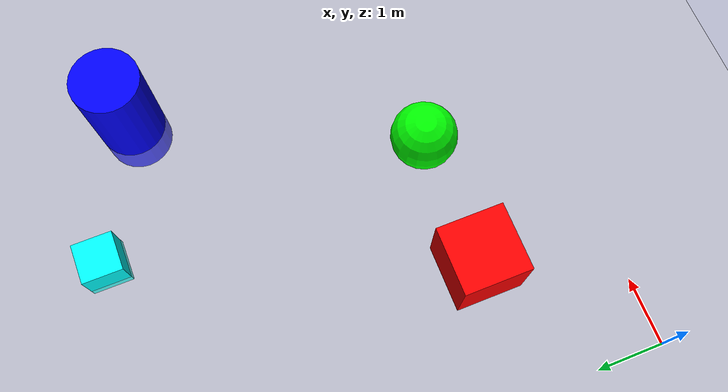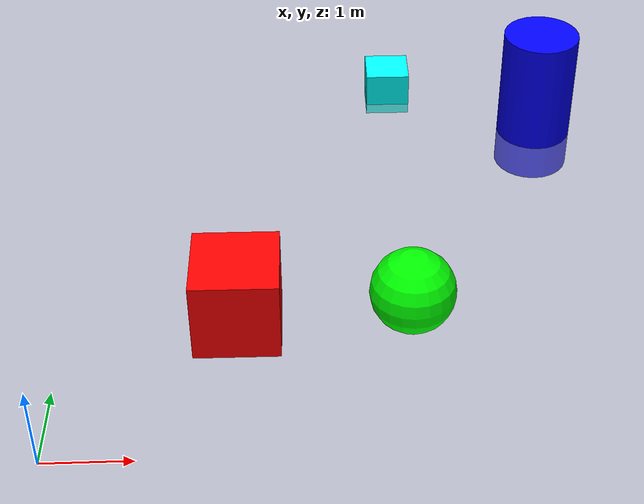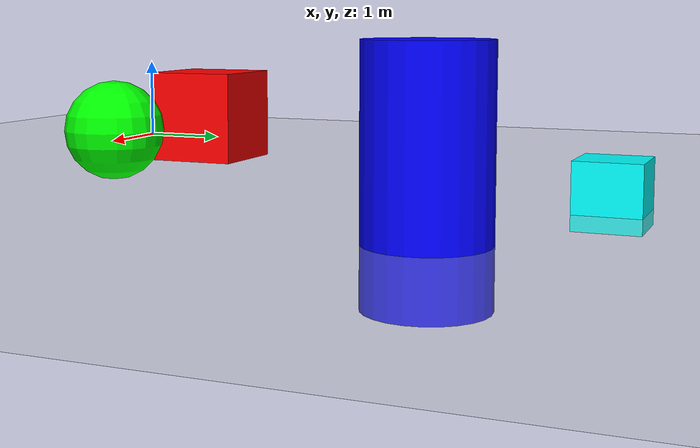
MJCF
<?xml version="1.0" encoding="utf-8"?>
<mujoco model="test_scene">
    <!-- 模型的世界定义 -->
    <worldbody>
        <!-- 地面 -->
        <geom name="ground" type="plane" size="0 0 0.1" rgba="0.8 0.8 0.8 1"/>

        <!-- 障碍物：矩形 box -->
        <geom name="box1" type="box" size="0.5 0.5 0.5" pos="2 2 0.5" rgba="1 0 0 1"/>

        <!-- 障碍物：球体 -->
        <geom name="sphere1" type="sphere" size="0.5" pos="4 2 0.5" rgba="0 1 0 1"/>

        <!-- 障碍物：圆柱体 -->
        <geom name="cylinder1" type="cylinder" size="0.5 1.0" pos="6 6 0.5" rgba="0 0 1 1"/>

        <!-- 自由空间中的小盒子（没有障碍物的区域） -->
        <geom name="box2" type="box" size="0.3 0.3 0.3" pos="4 7 0.15" rgba="0 1 1 1"/>
    </worldbody>
</mujoco>
